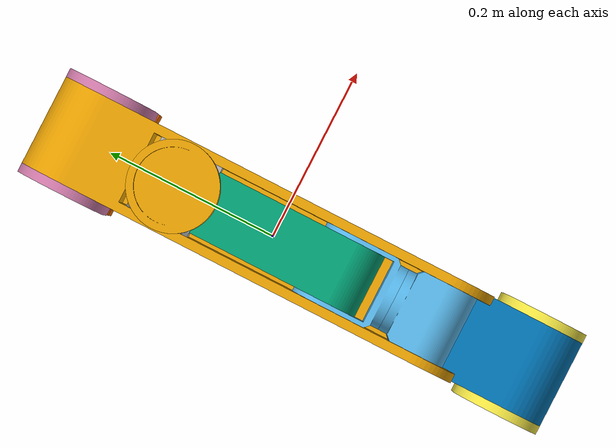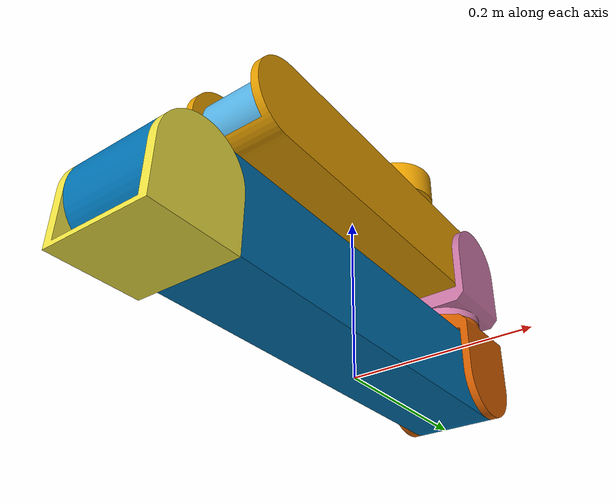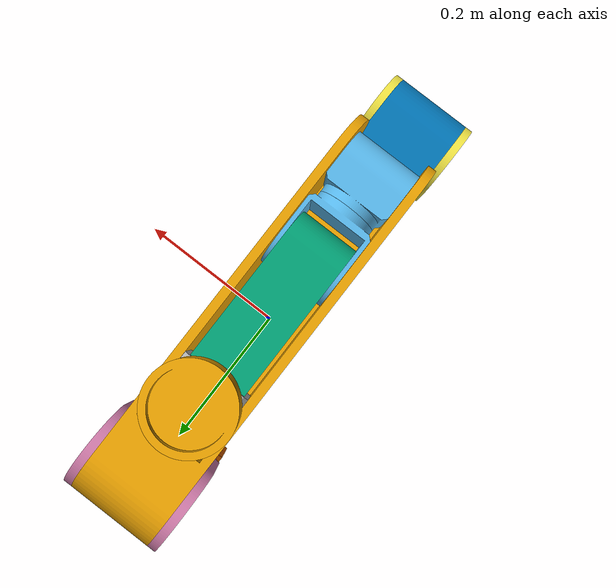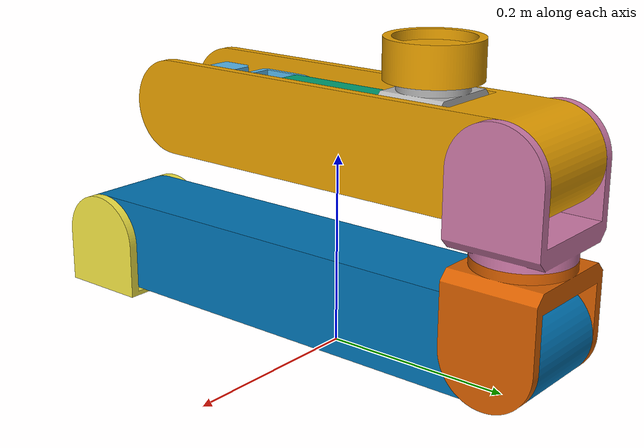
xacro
<?xml version="1.0"?>
<robot xmlns:xacro="http://www.ros.org/wiki/xacro" name="for">

    <!-- Import for urdf file -->
    <xacro:include filename="$(find arm_description)/urdf/model.urdf" />

    <!-- Import control_xacro -->
    <xacro:include filename="for.ros2_control.xacro" />

    <xacro:for_ros2_control name="FakeSystem" />

</robot>

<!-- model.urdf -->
<robot name="for">
    <link name="middle_arm">
        <inertial>
            <origin xyz="-0.006821813314628998 -0.1532041560338326 0.05000000000000082" rpy="0.0 -0.0 0.0" />
            <mass value="14.913336866289496" />
            <inertia ixx="0.3456641663469676" iyy="0.033127800192854884" izz="0.3412699882035891" ixy="-0.008837326981739557" iyz="-2.240376359976674e-16" ixz="-1.0096436329707436e-15" />
        </inertial>
        <visual name="middle_arm_visual">
            <origin xyz="0.23000000000000087 -0.2150000000000016 0.05000000000000074" rpy="1.0317267873372e-15 -1.5707963267948937 0" />
            <geometry>
                <mesh filename="package://arm_description/meshes/middle_arm.stl" scale="0.001 0.001 0.001" />
            </geometry>
        </visual>
        <collision name="middle_arm_collision">
            <origin xyz="0.23000000000000087 -0.2150000000000016 0.05000000000000074" rpy="1.0317267873372e-15 -1.5707963267948937 0" />
            <geometry>
                <mesh filename="package://arm_description/meshes/middle_arm.stl" scale="0.001 0.001 0.001" />
            </geometry>
        </collision>
    </link>
    <link name="middle_joint">
        <inertial>
            <origin xyz="-6.750155989720952e-16 -0.0065165722705416585 -0.04000000000000133" rpy="0.0 -0.0 0.0" />
            <mass value="2.4815724758018978" />
            <inertia ixx="0.0023990415702580536" iyy="0.0022574261860321965" izz="0.002172420223713223" ixy="4.163336342344337e-17" iyz="8.016912307078491e-18" ixz="-1.587132717554275e-17" />
        </inertial>
        <visual name="middle_joint_visual">
            <origin xyz="0.2299999999999995 -0.18499999999999783 -0.04000000000000054" rpy="-3.1415926535897922 1.5707963267948928 0" />
            <geometry>
                <mesh filename="package://arm_description/meshes/middle_joint.stl" scale="0.001 0.001 0.001" />
            </geometry>
        </visual>
        <collision name="middle_joint_collision">
            <origin xyz="0.2299999999999995 -0.18499999999999783 -0.04000000000000054" rpy="-3.1415926535897922 1.5707963267948928 0" />
            <geometry>
                <mesh filename="package://arm_description/meshes/middle_joint.stl" scale="0.001 0.001 0.001" />
            </geometry>
        </collision>
    </link>
    <link name="end_arm">
        <inertial>
            <origin xyz="0.00017296597296638795 -0.0955928007405587 -0.03500000000000232" rpy="0.0 -0.0 0.0" />
            <mass value="8.692067657781596" />
            <inertia ixx="0.04478719129792861" iyy="0.007156272496323668" izz="0.04484494187373855" ixy="1.2648704068807248e-05" iyz="2.643232454991465e-16" ixz="-4.07832905001567e-15" />
        </inertial>
        <visual name="end_arm_visual">
            <origin xyz="0.23000000000000767 -0.08000000000000071 -0.03500000000000412" rpy="-3.1415926535897922 1.5707963267948926 0" />
            <geometry>
                <mesh filename="package://arm_description/meshes/end_arm.stl" scale="0.001 0.001 0.001" />
            </geometry>
        </visual>
        <collision name="end_arm_collision">
            <origin xyz="0.23000000000000767 -0.08000000000000071 -0.03500000000000412" rpy="-3.1415926535897922 1.5707963267948926 0" />
            <geometry>
                <mesh filename="package://arm_description/meshes/end_arm.stl" scale="0.001 0.001 0.001" />
            </geometry>
        </collision>
    </link>
    <link name="base_link">
        <inertial>
            <origin xyz="0.0 -0.30000000000000004 0.049192069318732934" rpy="0.0 0.0 0.0" />
            <mass value="3.492381453934488" />
            <inertia ixx="0.004385396235027539" iyy="0.00898624245054548" izz="0.008077354797414282" ixy="8.567440090700984e-18" iyz="-1.3877787807814457e-17" ixz="-1.4279066817834973e-18" />
        </inertial>
        <visual name="base_link_visual">
            <origin xyz="0.0 0.0 0.0" rpy="0.0 0.0 0.0" />
            <geometry>
                <mesh filename="package://arm_description/meshes/base_link.stl" scale="0.001 0.001 0.001" />
            </geometry>
        </visual>
        <collision name="base_link_collision">
            <origin xyz="0.0 0.0 0.0" rpy="0.0 0.0 0.0" />
            <geometry>
                <mesh filename="package://arm_description/meshes/base_link.stl" scale="0.001 0.001 0.001" />
            </geometry>
        </collision>
    </link>
    <link name="bottom_arm">
        <inertial>
            <origin xyz="-8.881784197001253e-17 -0.25750000000009193 0.04999999999999999" rpy="0.0 -0.0 0.0" />
            <mass value="43.51018779133492" />
            <inertia ixx="1.2049427875736067" iyy="0.07331976297533455" izz="1.205745570896721" ixy="-1.8041124150158794e-16" iyz="1.1484879674491842e-16" ixz="1.599081144887326e-16" />
        </inertial>
        <visual name="bottom_arm_visual">
            <origin xyz="-0.059999999999999984 -0.21499999999999975 0.04999999999999998" rpy="-0.0 1.5707963267948966 0" />
            <geometry>
                <mesh filename="package://arm_description/meshes/bottom_arm.stl" scale="0.001 0.001 0.001" />
            </geometry>
        </visual>
        <collision name="bottom_arm_collision">
            <origin xyz="-0.059999999999999984 -0.21499999999999975 0.04999999999999998" rpy="-0.0 1.5707963267948966 0" />
            <geometry>
                <mesh filename="package://arm_description/meshes/bottom_arm.stl" scale="0.001 0.001 0.001" />
            </geometry>
        </collision>
    </link>
    <link name="double_hinge_1">
        <inertial>
            <origin xyz="0.037688201448005214 -4.263256414560601e-16 -0.04999999999999995" rpy="1.3684555315672042e-48 -1.3684555315672045e-48 0.0" />
            <mass value="4.364478285234242" />
            <inertia ixx="0.010933091857069529" iyy="0.013601374091802999" izz="0.00880246045395322" ixy="5.5511151231257815e-17" iyz="2.788017890091272e-17" ixz="3.145486945329299e-17" />
        </inertial>
        <visual name="double_hinge_1_visual">
            <origin xyz="-0.20000000000000018 -0.05000000000000057 -0.04999999999999997" rpy="-1.5707963267948961 -1.5707963267948963 0" />
            <geometry>
                <mesh filename="package://arm_description/meshes/double_hinge_1.stl" scale="0.001 0.001 0.001" />
            </geometry>
        </visual>
        <collision name="double_hinge_1_collision">
            <origin xyz="-0.20000000000000018 -0.05000000000000057 -0.04999999999999997" rpy="-1.5707963267948961 -1.5707963267948963 0" />
            <geometry>
                <mesh filename="package://arm_description/meshes/double_hinge_1.stl" scale="0.001 0.001 0.001" />
            </geometry>
        </collision>
    </link>
    <link name="double_hinge_2">
        <inertial>
            <origin xyz="-1.2876682965766517e-17 -0.05419056169125146 -4.263256414560601e-16" rpy="0.0 -0.0 0.0" />
            <mass value="4.67274706436774" />
            <inertia ixx="0.00950541138801303" iyy="0.01102942585054853" izz="0.014304325025858267" ixy="2.609845593342295e-16" iyz="3.608224830031759e-16" ixz="1.5823643597379597e-15" />
        </inertial>
        <visual name="double_hinge_2_visual">
            <origin xyz="1.0991207926034845e-16 0.27499999999999974 0.0499999999999995" rpy="3.1415926535897927 -2.2168155435431945e-16 5.415688790932895e-16" />
            <geometry>
                <mesh filename="package://arm_description/meshes/double_hinge_2.stl" scale="0.001 0.001 0.001" />
            </geometry>
        </visual>
        <collision name="double_hinge_2_collision">
            <origin xyz="1.0991207926034845e-16 0.27499999999999974 0.0499999999999995" rpy="3.1415926535897927 -2.2168155435431945e-16 5.415688790932895e-16" />
            <geometry>
                <mesh filename="package://arm_description/meshes/double_hinge_2.stl" scale="0.001 0.001 0.001" />
            </geometry>
        </collision>
    </link>
    <link name="end_hinge">
        <inertial>
            <origin xyz="0.04334767385960195 3.125622995980848e-09 -0.03500000000000026" rpy="-4.66414641492302e-93 -0.0 0.0" />
            <mass value="1.8425529334040007" />
            <inertia ixx="0.0017065787191412572" iyy="0.0028506776781958287" izz="0.0022766801931930203" ixy="-6.93889390390723e-18" iyz="-1.349129719192973e-18" ixz="-1.3067917138786373e-18" />
        </inertial>
        <visual name="end_hinge_visual">
            <origin xyz="-0.08000000190467255 0.23000000312562272 -0.03500000000000119" rpy="1.5707963267948994 -1.5707963267948928 0" />
            <geometry>
                <mesh filename="package://arm_description/meshes/end_hinge.stl" scale="0.001 0.001 0.001" />
            </geometry>
        </visual>
        <collision name="end_hinge_collision">
            <origin xyz="-0.08000000190467255 0.23000000312562272 -0.03500000000000119" rpy="1.5707963267948994 -1.5707963267948928 0" />
            <geometry>
                <mesh filename="package://arm_description/meshes/end_hinge.stl" scale="0.001 0.001 0.001" />
            </geometry>
        </collision>
    </link>
    <link name="effector">
        <inertial>
            <origin xyz="-1.8358539606686745e-16 -9.678477748060743e-05 -3.125622463073796e-09" rpy="0.0 -0.0 0.0" />
            <mass value="1.2740132104029298" />
            <inertia ixx="0.001096661275770655" iyy="0.0019325263719418735" izz="0.0010966612757706828" ixy="-1.228166048708614e-18" iyz="9.923322481625804e-49" ixz="-3.575970261924019e-18" />
        </inertial>
        <visual name="effector_visual">
            <origin xyz="-2.197930563591016e-13 -0.14731526000000084 0.11118834374874897" rpy="-1.5707963267948912 -1.9796710251879093e-12 3.8712692714181136e-15" />
            <geometry>
                <mesh filename="package://arm_description/meshes/effector.stl" scale="0.001 0.001 0.001" />
            </geometry>
        </visual>
        <collision name="effector_collision">
            <origin xyz="-2.197930563591016e-13 -0.14731526000000084 0.11118834374874897" rpy="-1.5707963267948912 -1.9796710251879093e-12 3.8712692714181136e-15" />
            <geometry>
                <mesh filename="package://arm_description/meshes/effector.stl" scale="0.001 0.001 0.001" />
            </geometry>
        </collision>
    </link>
    <link name="middle_hinge">
        <inertial>
            <origin xyz="-1.084588906092738e-15 7.460698725481052e-16 0.03337616066718633" rpy="0.0 -0.0 0.0" />
            <mass value="1.238346126302344" />
            <inertia ixx="0.0013074725172245866" iyy="0.0018814700022272892" izz="0.0013365020497914937" ixy="2.327640243039969e-19" iyz="1.0408340855860843e-17" ixz="-1.5078296759492959e-18" />
        </inertial>
        <visual name="middle_hinge_visual">
            <origin xyz="-5.195843755245733e-16 -0.22999999999999915 0.1424999999999975" rpy="1.5707963267948974 -3.9340553169929316e-15 -3.1415926535897927" />
            <geometry>
                <mesh filename="package://arm_description/meshes/middle_hinge.stl" scale="0.001 0.001 0.001" />
            </geometry>
        </visual>
        <collision name="middle_hinge_collision">
            <origin xyz="-5.195843755245733e-16 -0.22999999999999915 0.1424999999999975" rpy="1.5707963267948974 -3.9340553169929316e-15 -3.1415926535897927" />
            <geometry>
                <mesh filename="package://arm_description/meshes/middle_hinge.stl" scale="0.001 0.001 0.001" />
            </geometry>
        </collision>
    </link>
    <joint name="base_revolute" type="revolute">
        <origin xyz="-0.05 -0.3 0.06" rpy="-3.141592653589793 -1.5707963267948966 0" />
        <parent link="base_link" />
        <child link="bottom_arm" />
        <axis xyz="0.0 0.0 1.0" />
        <limit lower="0.0" upper="3.141593" effort="100" velocity="5.25" />
    </joint>
    <joint name="double_revolute_1" type="revolute">
        <origin xyz="0.0 -0.515 0.0" rpy="-3.141592653589793 1.2325951644078312e-32 0.0" />
        <parent link="bottom_arm" />
        <child link="double_hinge_1" />
        <axis xyz="-1.232595164407831e-32 -7.264100934339954e-33 -1.0" />
        <limit lower="-3.141593" upper="0.0" effort="100" velocity="5.25" />
    </joint>
    <joint name="double_spin" type="revolute">
        <origin xyz="0.075 0.0 -0.05" rpy="-1.5707963267948966 1.5707963267948966 0" />
        <parent link="double_hinge_1" />
        <child link="double_hinge_2" />
        <axis xyz="-2.394370405175024e-34 -1.0 9.860761315262648e-32" />
        <limit lower="-1.570796" upper="1.570796" effort="100" velocity="5.25" />
    </joint>
    <joint name="double_revolute_2" type="revolute">
        <origin xyz="0.05 -0.095 0.0" rpy="1.5707963267948966 -4.930380657631324e-32 -1.5707963267948966" />
        <parent link="double_hinge_2" />
        <child link="middle_arm" />
        <axis xyz="-3.3770725482791246e-31 0.0 1.0" />
        <limit lower="0" upper="3.141593" effort="100" velocity="5.25" />
    </joint>
    <joint name="middle_revolute" type="revolute">
        <origin xyz="0.0 -0.4 0.01" rpy="-3.141592653589793 -5.3492248113316545e-31 -1.9721522630525295e-31" />
        <parent link="middle_arm" />
        <child link="middle_joint" />
        <axis xyz="1.9721522630525295e-31 -8.8423821631989e-31 -1.0" />
        <limit lower="-3.141593" upper="0.0" effort="100" velocity="5.25" />
    </joint>
    <joint name="end_revolute_1" type="revolute">
        <origin xyz="0.035 0.0 0.0625" rpy="-1.5707963267948966 1.9721522630525295e-31 -1.5707963267948966" />
        <parent link="middle_hinge" />
        <child link="end_arm" />
        <axis xyz="0.0 3.5809630637045637e-31 -1.0" />
        <limit lower="-1.570796" upper="1.570796" effort="100" velocity="5.25" />
    </joint>
    <joint name="end_revolute_2" type="revolute">
        <origin xyz="0.0001847400000000121 -0.19118835 0.0" rpy="2.9813635182538454e-31 3.5311022049962373e-62 -9.860761315262648e-32" />
        <parent link="end_arm" />
        <child link="end_hinge" />
        <axis xyz="0.0 5.995995454507183e-32 -1.0" />
        <limit lower="0" upper="3.141593" effort="100" velocity="5.25" />
    </joint>
    <joint name="middle_spin" type="revolute">
        <origin xyz="0.0 -0.0425 -0.04" rpy="1.5707963267948966 -1.5707963267948966 0" />
        <parent link="middle_joint" />
        <child link="middle_hinge" />
        <axis xyz="2.4316648279921467e-31 -1.9721522630525295e-31 1.0" />
        <limit lower="-1.570796" upper="1.570796" effort="100" velocity="5.25" />
    </joint>
    <joint name="effector_spin" type="continuous">
        <origin xyz="0.0825 0.0 -0.035" rpy="1.5707963267948966 -1.5707963267948966 0" />
        <parent link="end_hinge" />
        <child link="effector" />
        <axis xyz="0.0 1.0 0.0" />
    </joint>
</robot>
